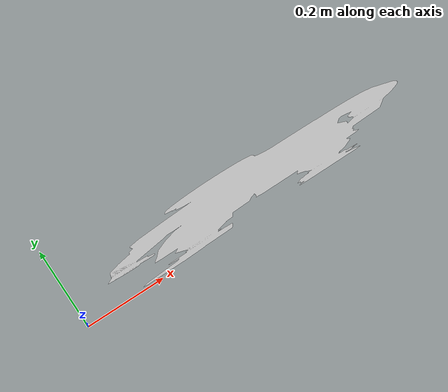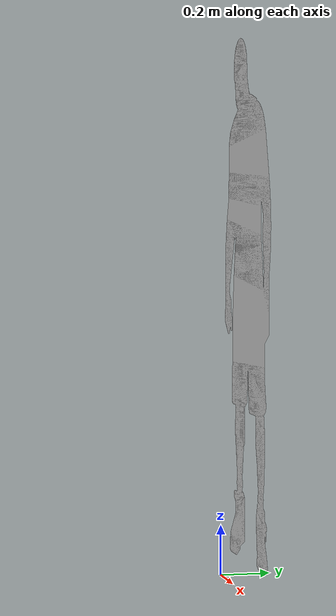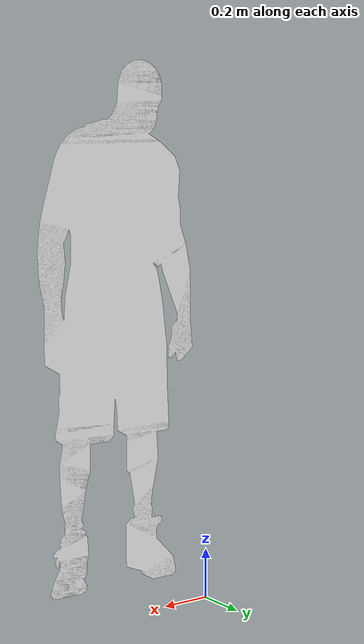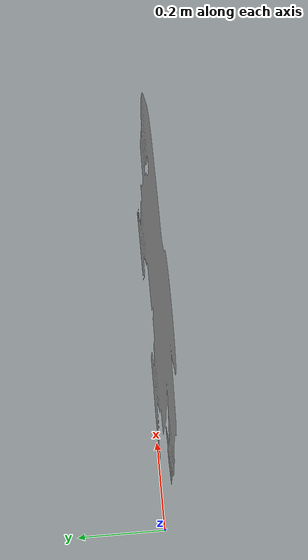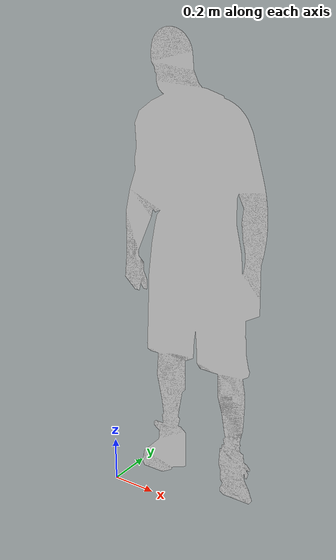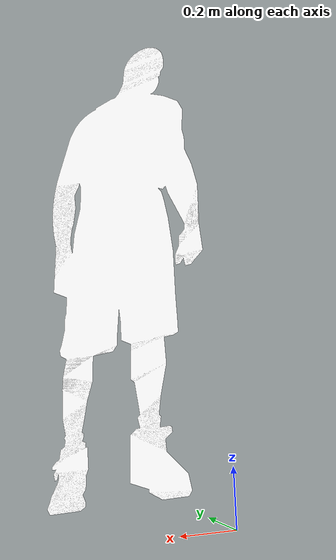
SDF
<?xml version="1.0" ?>
<sdf version="1.6">
  <model name="shaq">
    <static>true</static>
    <link name="link">
      <collision name="collision">
        <geometry>
          <mesh>
            <scale>1 1 1</scale>
            <uri>model://shaq/meshes/shaq.dae</uri>
          </mesh>
        </geometry>
      </collision>
      <visual name="visual">
        <geometry>
          <mesh>
            <scale>1 1 1</scale>
            <uri>model://shaq/meshes/shaq.dae</uri>
          </mesh>
        </geometry>
       <material>
         <script>
           <uri>model://shaq/materials/scripts</uri>
           <uri>model://shaq/materials/textures</uri>
           <name>shaq/Diffuse</name>
         </script>
       </material>
      </visual>
    </link>
  </model>
</sdf>
